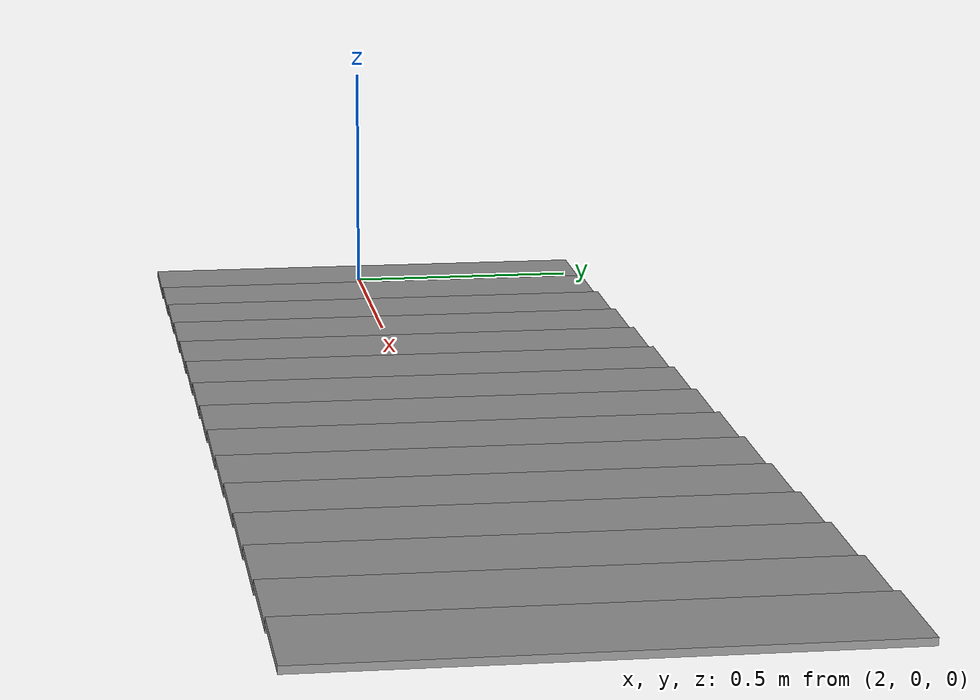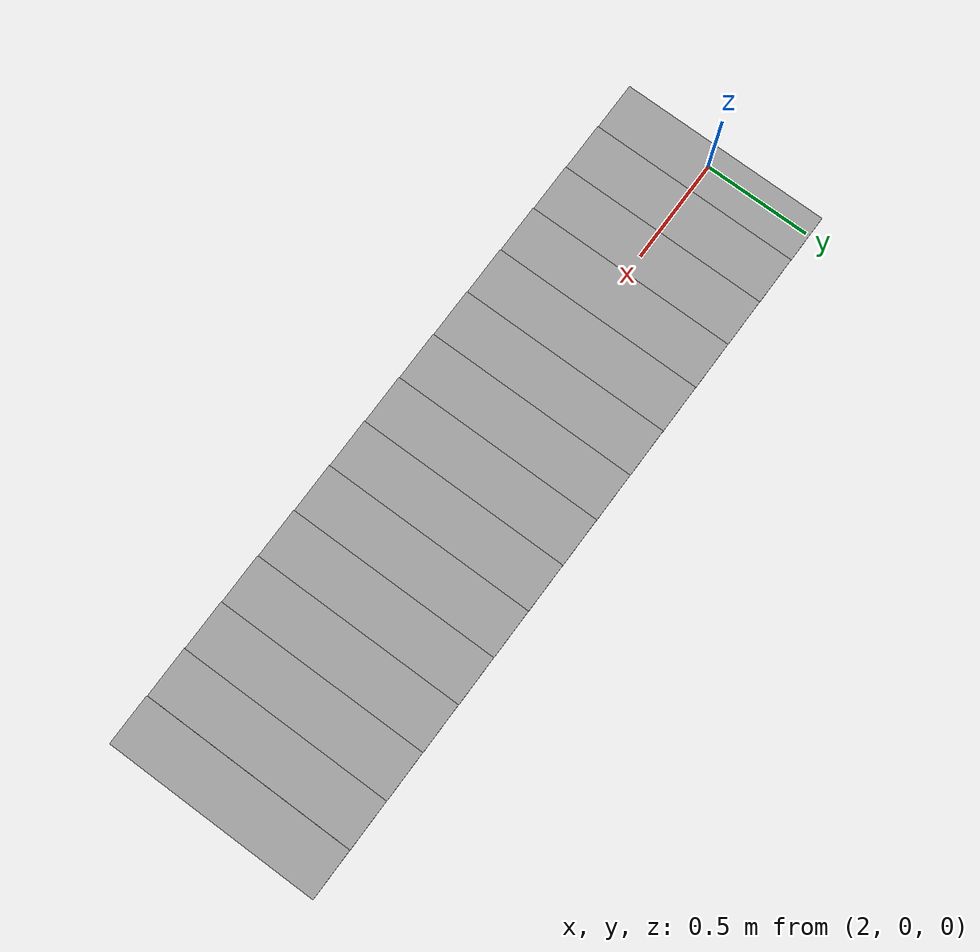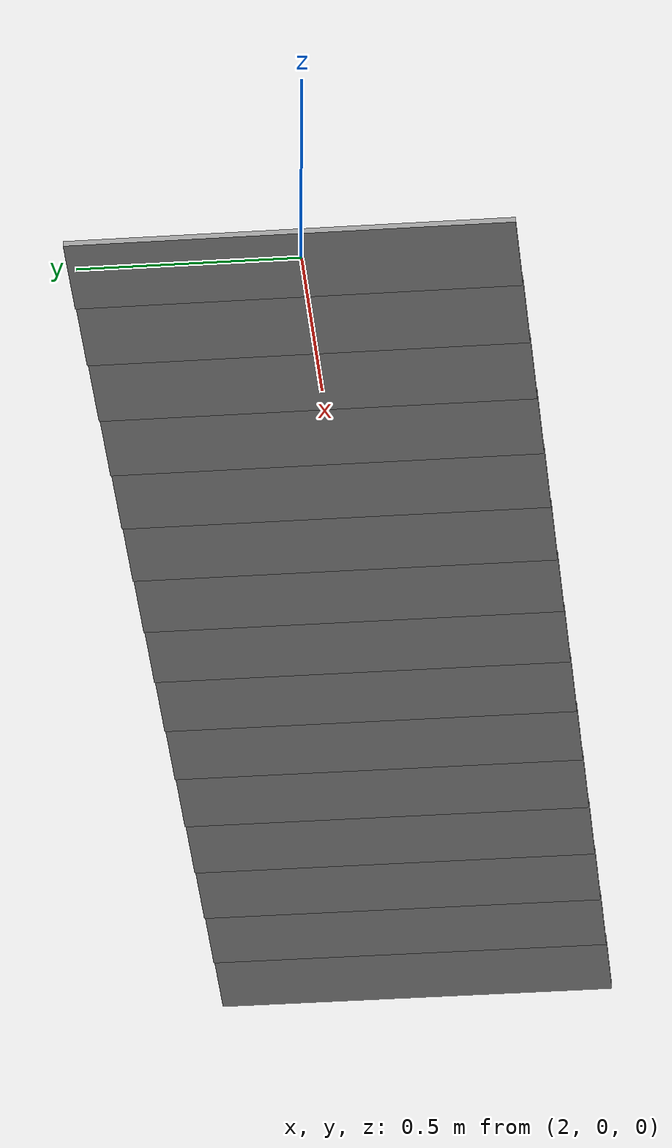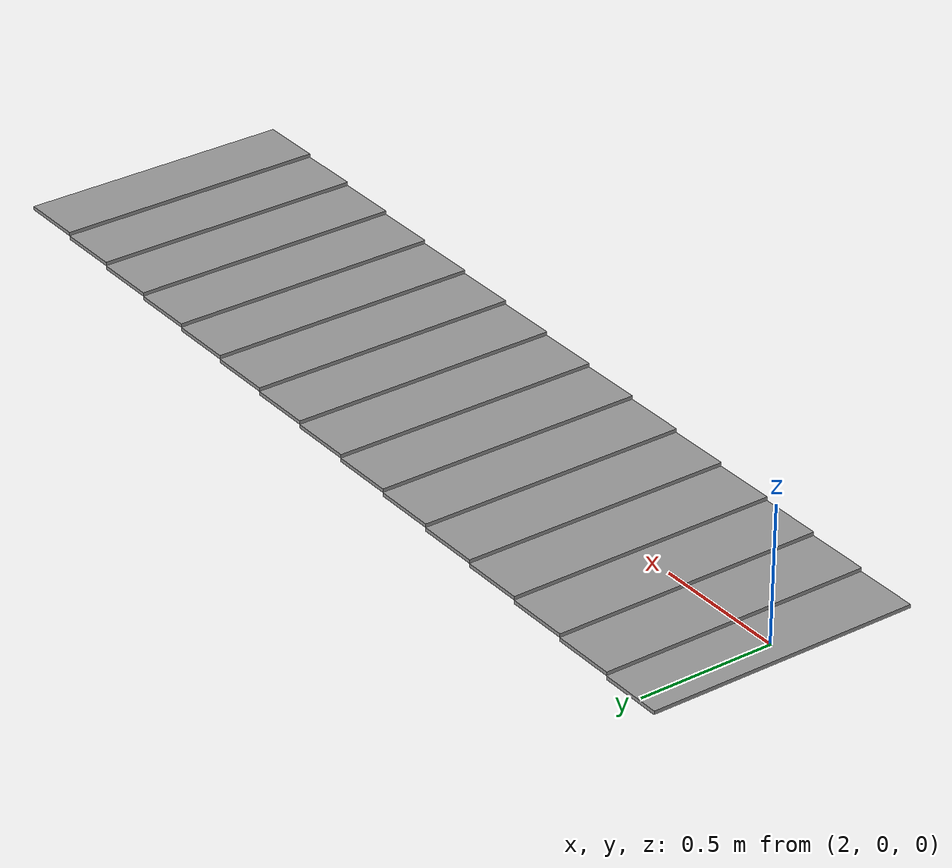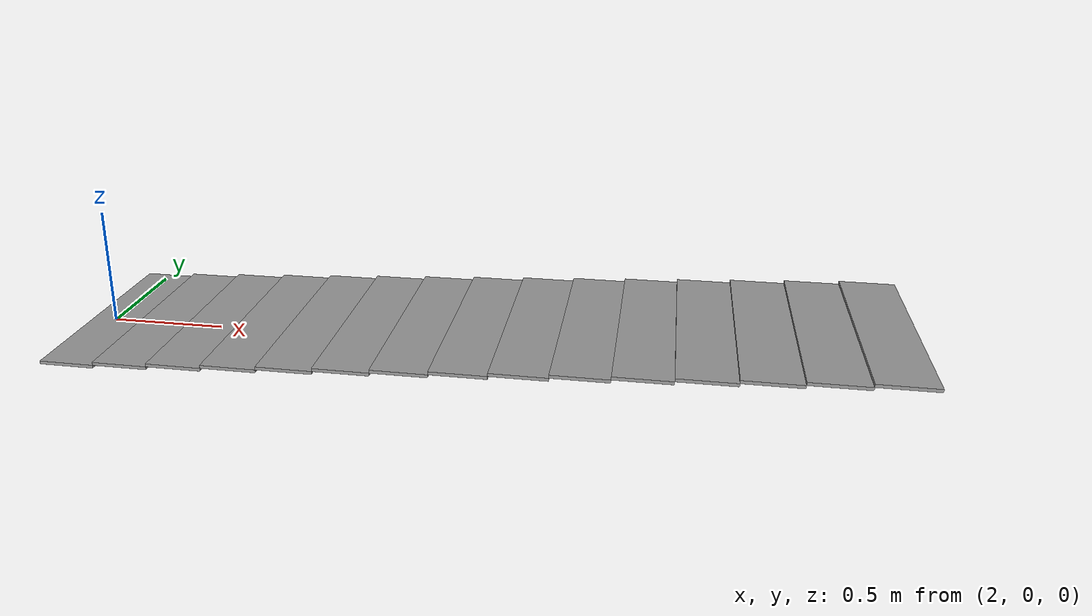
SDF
<?xml version='1.0'?>
<sdf version='1.7'>
  <model name='drok3_ex1'>
    <pose>2.705 0.02 0 0 -0 0</pose>
    <link name='Stairs_0'>
      <visual name='Stairs_0_Visual_0'>
        <pose>-0.678334 -0 0.006667 0 -0 1.5708</pose>
        <geometry>
          <box>
            <size>1 0.233333 0.013333</size>
          </box>
        </geometry>
        <material>
          <script>
            <uri>file://media/materials/scripts/gazebo.material</uri>
            <name>Gazebo/Grey</name>
          </script>
          <ambient>1 1 1 1</ambient>
        </material>
        <meta>
          <layer>0</layer>
        </meta>
      </visual>
      <collision name='Stairs_0_Collision_0'>
        <geometry>
          <box>
            <size>1 0.233333 0.013333</size>
          </box>
        </geometry>
        <pose>-0.678334 -0 0.006667 0 -0 1.5708</pose>
      </collision>
      <visual name='Stairs_0_Visual_1'>
        <pose>-0.445 -0 0.02 0 -0 1.5708</pose>
        <geometry>
          <box>
            <size>1 0.233333 0.013333</size>
          </box>
        </geometry>
        <material>
          <script>
            <uri>file://media/materials/scripts/gazebo.material</uri>
            <name>Gazebo/Grey</name>
          </script>
          <ambient>1 1 1 1</ambient>
        </material>
        <meta>
          <layer>0</layer>
        </meta>
      </visual>
      <collision name='Stairs_0_Collision_1'>
        <geometry>
          <box>
            <size>1 0.233333 0.013333</size>
          </box>
        </geometry>
        <pose>-0.445 -0 0.02 0 -0 1.5708</pose>
      </collision>
      <visual name='Stairs_0_Visual_2'>
        <pose>-0.211667 -0 0.033333 0 -0 1.5708</pose>
        <geometry>
          <box>
            <size>1 0.233333 0.013333</size>
          </box>
        </geometry>
        <material>
          <script>
            <uri>file://media/materials/scripts/gazebo.material</uri>
            <name>Gazebo/Grey</name>
          </script>
          <ambient>1 1 1 1</ambient>
        </material>
        <meta>
          <layer>0</layer>
        </meta>
      </visual>
      <collision name='Stairs_0_Collision_2'>
        <geometry>
          <box>
            <size>1 0.233333 0.013333</size>
          </box>
        </geometry>
        <pose>-0.211667 -0 0.033333 0 -0 1.5708</pose>
      </collision>
      <visual name='Stairs_0_Visual_3'>
        <pose>0.021666 -0 0.046667 0 -0 1.5708</pose>
        <geometry>
          <box>
            <size>1 0.233333 0.013333</size>
          </box>
        </geometry>
        <material>
          <script>
            <uri>file://media/materials/scripts/gazebo.material</uri>
            <name>Gazebo/Grey</name>
          </script>
          <ambient>1 1 1 1</ambient>
        </material>
        <meta>
          <layer>0</layer>
        </meta>
      </visual>
      <collision name='Stairs_0_Collision_3'>
        <geometry>
          <box>
            <size>1 0.233333 0.013333</size>
          </box>
        </geometry>
        <pose>0.021666 -0 0.046667 0 -0 1.5708</pose>
      </collision>
      <visual name='Stairs_0_Visual_4'>
        <pose>0.255 -0 0.06 0 -0 1.5708</pose>
        <geometry>
          <box>
            <size>1 0.233333 0.013333</size>
          </box>
        </geometry>
        <material>
          <script>
            <uri>file://media/materials/scripts/gazebo.material</uri>
            <name>Gazebo/Grey</name>
          </script>
          <ambient>1 1 1 1</ambient>
        </material>
        <meta>
          <layer>0</layer>
        </meta>
      </visual>
      <collision name='Stairs_0_Collision_4'>
        <geometry>
          <box>
            <size>1 0.233333 0.013333</size>
          </box>
        </geometry>
        <pose>0.255 -0 0.06 0 -0 1.5708</pose>
      </collision>
      <visual name='Stairs_0_Visual_5'>
        <pose>0.488333 -0 0.073333 0 -0 1.5708</pose>
        <geometry>
          <box>
            <size>1 0.233333 0.013333</size>
          </box>
        </geometry>
        <material>
          <script>
            <uri>file://media/materials/scripts/gazebo.material</uri>
            <name>Gazebo/Grey</name>
          </script>
          <ambient>1 1 1 1</ambient>
        </material>
        <meta>
          <layer>0</layer>
        </meta>
      </visual>
      <collision name='Stairs_0_Collision_5'>
        <geometry>
          <box>
            <size>1 0.233333 0.013333</size>
          </box>
        </geometry>
        <pose>0.488333 -0 0.073333 0 -0 1.5708</pose>
      </collision>
      <visual name='Stairs_0_Visual_6'>
        <pose>0.721667 -0 0.086667 0 -0 1.5708</pose>
        <geometry>
          <box>
            <size>1 0.233333 0.013333</size>
          </box>
        </geometry>
        <material>
          <script>
            <uri>file://media/materials/scripts/gazebo.material</uri>
            <name>Gazebo/Grey</name>
          </script>
          <ambient>1 1 1 1</ambient>
        </material>
        <meta>
          <layer>0</layer>
        </meta>
      </visual>
      <collision name='Stairs_0_Collision_6'>
        <geometry>
          <box>
            <size>1 0.233333 0.013333</size>
          </box>
        </geometry>
        <pose>0.721667 -0 0.086667 0 -0 1.5708</pose>
      </collision>
      <visual name='Stairs_0_Visual_7'>
        <pose>0.955 0 0.1 0 -0 1.5708</pose>
        <geometry>
          <box>
            <size>1 0.233333 0.013333</size>
          </box>
        </geometry>
        <material>
          <script>
            <uri>file://media/materials/scripts/gazebo.material</uri>
            <name>Gazebo/Grey</name>
          </script>
          <ambient>1 1 1 1</ambient>
        </material>
        <meta>
          <layer>0</layer>
        </meta>
      </visual>
      <collision name='Stairs_0_Collision_7'>
        <geometry>
          <box>
            <size>1 0.233333 0.013333</size>
          </box>
        </geometry>
        <pose>0.955 0 0.1 0 -0 1.5708</pose>
      </collision>
      <visual name='Stairs_0_Visual_8'>
        <pose>1.18833 0 0.113333 0 -0 1.5708</pose>
        <geometry>
          <box>
            <size>1 0.233333 0.013333</size>
          </box>
        </geometry>
        <material>
          <script>
            <uri>file://media/materials/scripts/gazebo.material</uri>
            <name>Gazebo/Grey</name>
          </script>
          <ambient>1 1 1 1</ambient>
        </material>
        <meta>
          <layer>0</layer>
        </meta>
      </visual>
      <collision name='Stairs_0_Collision_8'>
        <geometry>
          <box>
            <size>1 0.233333 0.013333</size>
          </box>
        </geometry>
        <pose>1.18833 0 0.113333 0 -0 1.5708</pose>
      </collision>
      <visual name='Stairs_0_Visual_9'>
        <pose>1.42167 0 0.126667 0 -0 1.5708</pose>
        <geometry>
          <box>
            <size>1 0.233333 0.013333</size>
          </box>
        </geometry>
        <material>
          <script>
            <uri>file://media/materials/scripts/gazebo.material</uri>
            <name>Gazebo/Grey</name>
          </script>
          <ambient>1 1 1 1</ambient>
        </material>
        <meta>
          <layer>0</layer>
        </meta>
      </visual>
      <collision name='Stairs_0_Collision_9'>
        <geometry>
          <box>
            <size>1 0.233333 0.013333</size>
          </box>
        </geometry>
        <pose>1.42167 0 0.126667 0 -0 1.5708</pose>
      </collision>
      <visual name='Stairs_0_Visual_10'>
        <pose>1.655 0 0.14 0 -0 1.5708</pose>
        <geometry>
          <box>
            <size>1 0.233333 0.013333</size>
          </box>
        </geometry>
        <material>
          <script>
            <uri>file://media/materials/scripts/gazebo.material</uri>
            <name>Gazebo/Grey</name>
          </script>
          <ambient>1 1 1 1</ambient>
        </material>
        <meta>
          <layer>0</layer>
        </meta>
      </visual>
      <collision name='Stairs_0_Collision_10'>
        <geometry>
          <box>
            <size>1 0.233333 0.013333</size>
          </box>
        </geometry>
        <pose>1.655 0 0.14 0 -0 1.5708</pose>
      </collision>
      <visual name='Stairs_0_Visual_11'>
        <pose>1.88833 0 0.153333 0 -0 1.5708</pose>
        <geometry>
          <box>
            <size>1 0.233333 0.013333</size>
          </box>
        </geometry>
        <material>
          <script>
            <uri>file://media/materials/scripts/gazebo.material</uri>
            <name>Gazebo/Grey</name>
          </script>
          <ambient>1 1 1 1</ambient>
        </material>
        <meta>
          <layer>0</layer>
        </meta>
      </visual>
      <collision name='Stairs_0_Collision_11'>
        <geometry>
          <box>
            <size>1 0.233333 0.013333</size>
          </box>
        </geometry>
        <pose>1.88833 0 0.153333 0 -0 1.5708</pose>
      </collision>
      <visual name='Stairs_0_Visual_12'>
        <pose>2.12167 0 0.166667 0 -0 1.5708</pose>
        <geometry>
          <box>
            <size>1 0.233333 0.013333</size>
          </box>
        </geometry>
        <material>
          <script>
            <uri>file://media/materials/scripts/gazebo.material</uri>
            <name>Gazebo/Grey</name>
          </script>
          <ambient>1 1 1 1</ambient>
        </material>
        <meta>
          <layer>0</layer>
        </meta>
      </visual>
      <collision name='Stairs_0_Collision_12'>
        <geometry>
          <box>
            <size>1 0.233333 0.013333</size>
          </box>
        </geometry>
        <pose>2.12167 0 0.166667 0 -0 1.5708</pose>
      </collision>
      <visual name='Stairs_0_Visual_13'>
        <pose>2.355 0 0.18 0 -0 1.5708</pose>
        <geometry>
          <box>
            <size>1 0.233333 0.013333</size>
          </box>
        </geometry>
        <material>
          <script>
            <uri>file://media/materials/scripts/gazebo.material</uri>
            <name>Gazebo/Grey</name>
          </script>
          <ambient>1 1 1 1</ambient>
        </material>
        <meta>
          <layer>0</layer>
        </meta>
      </visual>
      <collision name='Stairs_0_Collision_13'>
        <geometry>
          <box>
            <size>1 0.233333 0.013333</size>
          </box>
        </geometry>
        <pose>2.355 0 0.18 0 -0 1.5708</pose>
      </collision>
      <visual name='Stairs_0_Visual_14'>
        <pose>2.58833 0 0.193333 0 -0 1.5708</pose>
        <geometry>
          <box>
            <size>1 0.233333 0.013333</size>
          </box>
        </geometry>
        <material>
          <script>
            <uri>file://media/materials/scripts/gazebo.material</uri>
            <name>Gazebo/Grey</name>
          </script>
          <ambient>1 1 1 1</ambient>
        </material>
        <meta>
          <layer>0</layer>
        </meta>
      </visual>
      <collision name='Stairs_0_Collision_14'>
        <geometry>
          <box>
            <size>1 0.233333 0.013333</size>
          </box>
        </geometry>
        <pose>2.58833 0 0.193333 0 -0 1.5708</pose>
      </collision>
    </link>
    <static>1</static>
  </model>
</sdf>
